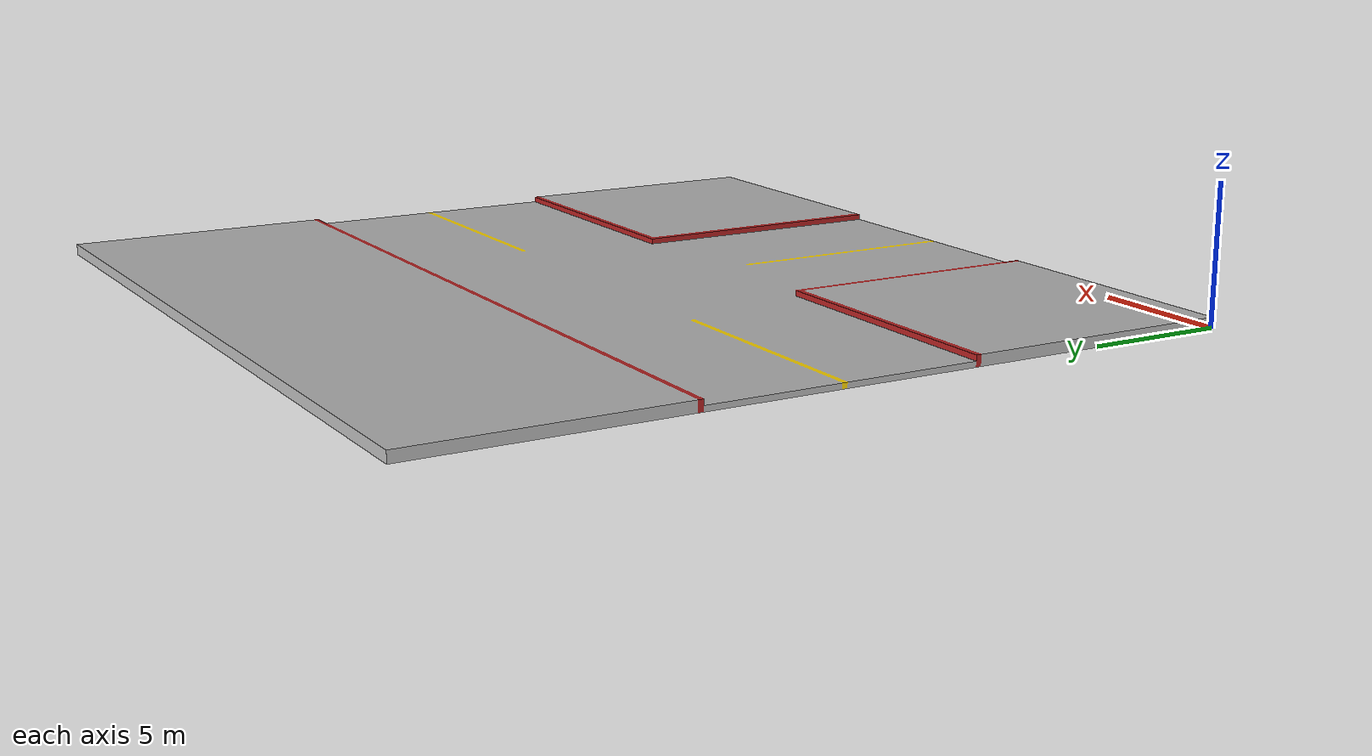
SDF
<?xml version="1.0" ?>
<sdf version="1.5">
   <model name="cruce3">
      <static>true</static>
      <link name="cruce3_link">
         <collision name="cruce3_collision">
            <pose>15 15 0.10  0 0 0</pose>
            <geometry>
               <box>
                  <size>30 30 0.20</size>
               </box>
            </geometry>
         </collision>
         <visual name="cruce3_mesh">
            <cast_shadows>true</cast_shadows>
            <geometry>
               <mesh>
                  <uri>model://cruce3/meshes/cruce3.dae</uri>
               </mesh>
            </geometry>
         </visual>
      </link>
   </model>
</sdf>
